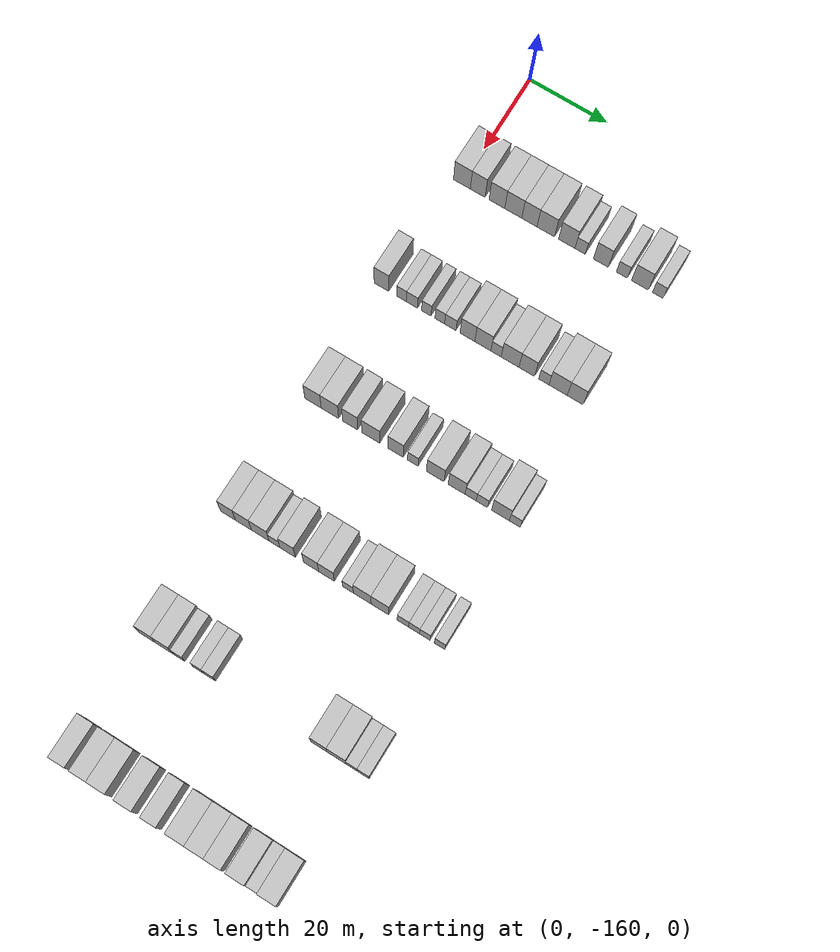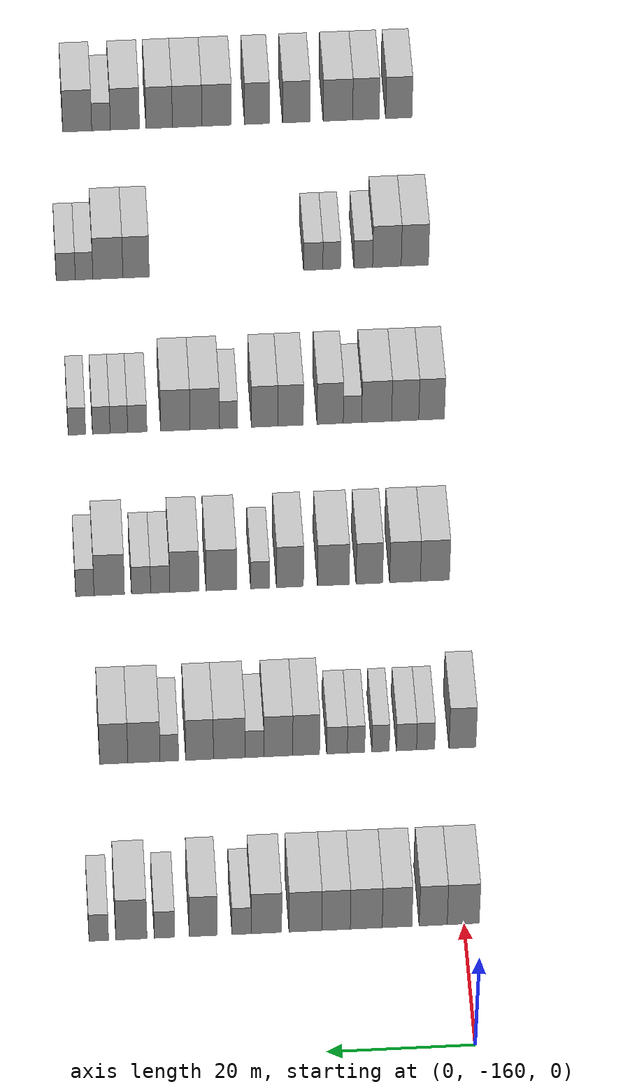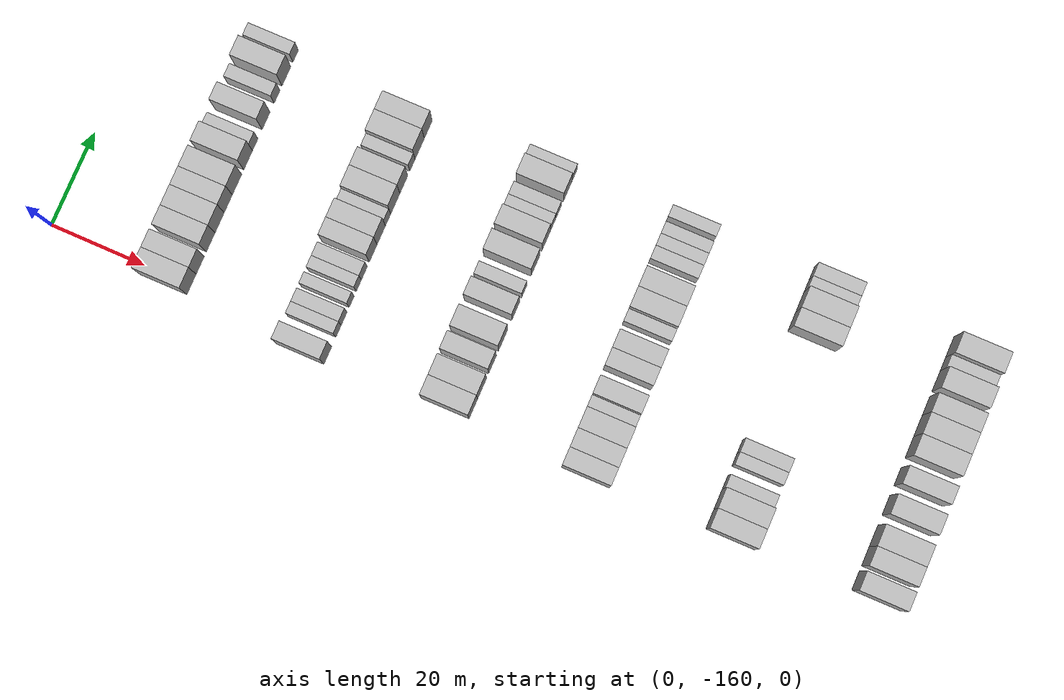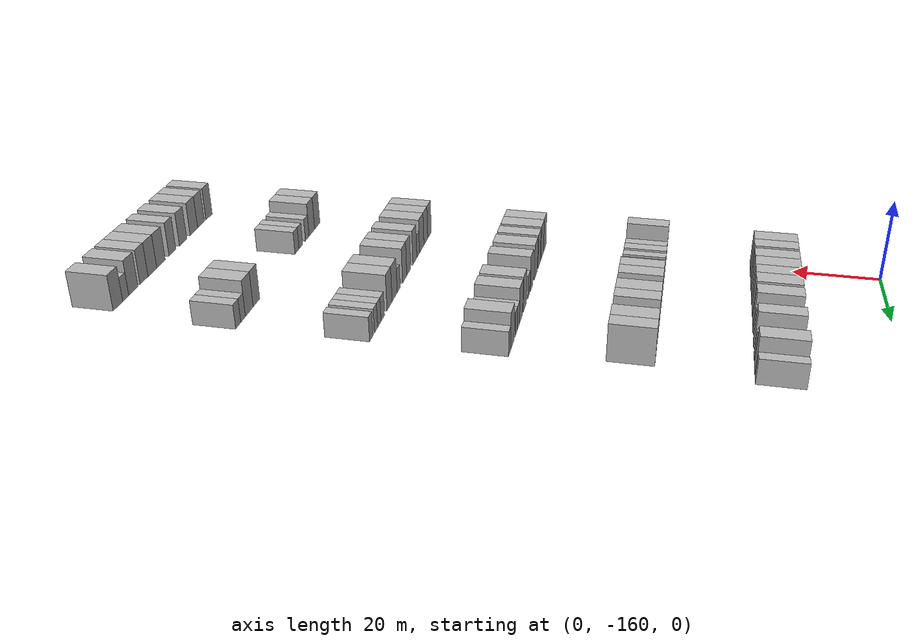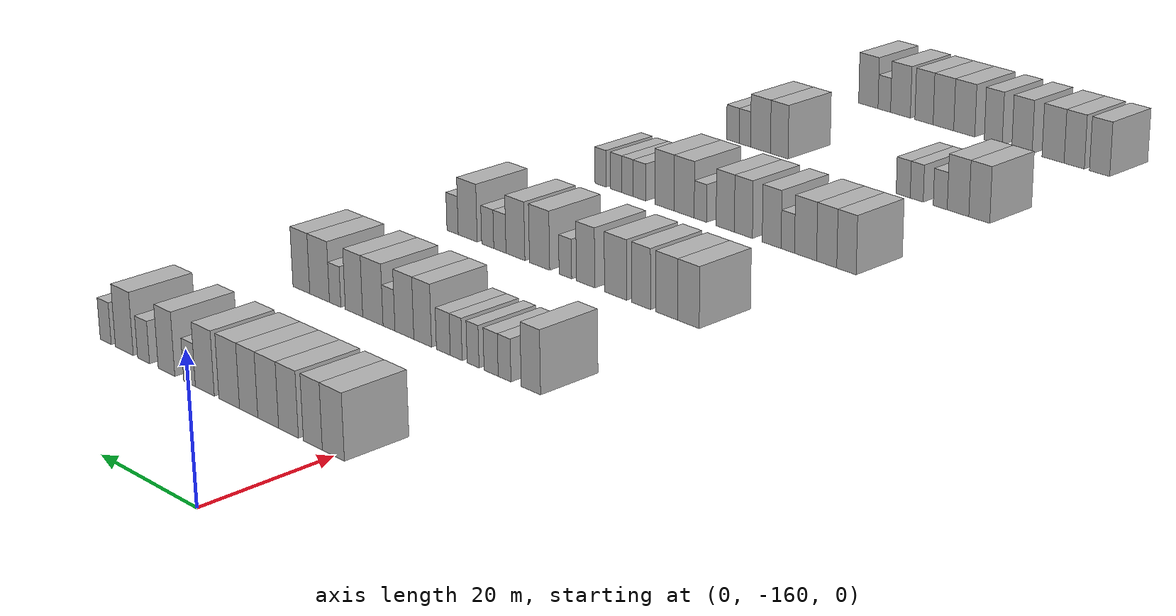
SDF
<sdf version="1.6">
 <world name="default">
  <model name="building_70">
   <static>1</static>
   <pose>25.0000 -159.8549 0 0.000000 0.000000 0.000000</pose>
   <link name="link">
    <pose>0 0 4.50 0 0 0</pose>
    <collision name="collision"><geometry><box><size>10.0000 4.3478 9.0000</size></box></geometry></collision>
    <visual name="visual">
     <cast_shadows>0</cast_shadows>
     <geometry><box><size>10.0000 4.3478 9.0000</size></box></geometry>
     <material>
      <script>
       <uri>model://HANNAS_wall/materials/scripts</uri>
       <uri>model://HANNAS_wall/materials/textures</uri>
       <name>vrc/HANNAS_wall</name>
      </script>
     </material>
    </visual>
   </link>
  </model>
  <model name="building_71">
   <static>1</static>
   <pose>25.0000 -155.7763 0 0.000000 0.000000 0.000000</pose>
   <link name="link">
    <pose>0 0 4.50 0 0 0</pose>
    <collision name="collision"><geometry><box><size>10.0000 3.8095 9.0000</size></box></geometry></collision>
    <visual name="visual">
     <cast_shadows>0</cast_shadows>
     <geometry><box><size>10.0000 3.8095 9.0000</size></box></geometry>
     <material>
      <script>
       <uri>model://HANNAS_wall/materials/scripts</uri>
       <uri>model://HANNAS_wall/materials/textures</uri>
       <name>vrc/HANNAS_wall</name>
      </script>
     </material>
    </visual>
   </link>
  </model>
  <model name="building_72">
   <static>1</static>
   <pose>25.0000 -150.8501 0 0.000000 0.000000 0.000000</pose>
   <link name="link">
    <pose>0 0 4.50 0 0 0</pose>
    <collision name="collision"><geometry><box><size>10.0000 4.0429 9.0000</size></box></geometry></collision>
    <visual name="visual">
     <cast_shadows>0</cast_shadows>
     <geometry><box><size>10.0000 4.0429 9.0000</size></box></geometry>
     <material>
      <script>
       <uri>model://HANNAS_wall/materials/scripts</uri>
       <uri>model://HANNAS_wall/materials/textures</uri>
       <name>vrc/HANNAS_wall</name>
      </script>
     </material>
    </visual>
   </link>
  </model>
  <model name="building_73">
   <static>1</static>
   <pose>25.0000 -146.6563 0 0.000000 0.000000 0.000000</pose>
   <link name="link">
    <pose>0 0 4.50 0 0 0</pose>
    <collision name="collision"><geometry><box><size>10.0000 4.3446 9.0000</size></box></geometry></collision>
    <visual name="visual">
     <cast_shadows>0</cast_shadows>
     <geometry><box><size>10.0000 4.3446 9.0000</size></box></geometry>
     <material>
      <script>
       <uri>model://HANNAS_wall/materials/scripts</uri>
       <uri>model://HANNAS_wall/materials/textures</uri>
       <name>vrc/HANNAS_wall</name>
      </script>
     </material>
    </visual>
   </link>
  </model>
  <model name="building_74">
   <static>1</static>
   <pose>25.0000 -142.5463 0 0.000000 0.000000 0.000000</pose>
   <link name="link">
    <pose>0 0 4.50 0 0 0</pose>
    <collision name="collision"><geometry><box><size>10.0000 3.8754 9.0000</size></box></geometry></collision>
    <visual name="visual">
     <cast_shadows>0</cast_shadows>
     <geometry><box><size>10.0000 3.8754 9.0000</size></box></geometry>
     <material>
      <script>
       <uri>model://HANNAS_wall/materials/scripts</uri>
       <uri>model://HANNAS_wall/materials/textures</uri>
       <name>vrc/HANNAS_wall</name>
      </script>
     </material>
    </visual>
   </link>
  </model>
  <model name="building_75">
   <static>1</static>
   <pose>25.0000 -138.3824 0 0.000000 0.000000 0.000000</pose>
   <link name="link">
    <pose>0 0 4.50 0 0 0</pose>
    <collision name="collision"><geometry><box><size>10.0000 4.4525 9.0000</size></box></geometry></collision>
    <visual name="visual">
     <cast_shadows>0</cast_shadows>
     <geometry><box><size>10.0000 4.4525 9.0000</size></box></geometry>
     <material>
      <script>
       <uri>model://HANNAS_wall/materials/scripts</uri>
       <uri>model://HANNAS_wall/materials/textures</uri>
       <name>vrc/HANNAS_wall</name>
      </script>
     </material>
    </visual>
   </link>
  </model>
  <model name="building_76">
   <static>1</static>
   <pose>25.0000 -133.0756 0 0.000000 0.000000 0.000000</pose>
   <link name="link">
    <pose>0 0 4.50 0 0 0</pose>
    <collision name="collision"><geometry><box><size>10.0000 4.1610 9.0000</size></box></geometry></collision>
    <visual name="visual">
     <cast_shadows>0</cast_shadows>
     <geometry><box><size>10.0000 4.1610 9.0000</size></box></geometry>
     <material>
      <script>
       <uri>model://HANNAS_wall/materials/scripts</uri>
       <uri>model://HANNAS_wall/materials/textures</uri>
       <name>vrc/HANNAS_wall</name>
      </script>
     </material>
    </visual>
   </link>
  </model>
  <model name="building_77">
   <static>1</static>
   <pose>25.0000 -129.6955 0 0.000000 0.000000 0.000000</pose>
   <link name="link">
    <pose>0 0 3.00 0 0 0</pose>
    <collision name="collision"><geometry><box><size>10.0000 2.5992 6.0000</size></box></geometry></collision>
    <visual name="visual">
     <cast_shadows>0</cast_shadows>
     <geometry><box><size>10.0000 2.5992 6.0000</size></box></geometry>
     <material>
      <script>
       <uri>model://HANNAS_wall/materials/scripts</uri>
       <uri>model://HANNAS_wall/materials/textures</uri>
       <name>vrc/HANNAS_wall</name>
      </script>
     </material>
    </visual>
   </link>
  </model>
  <model name="building_78">
   <static>1</static>
   <pose>25.0000 -124.5091 0 0.000000 0.000000 0.000000</pose>
   <link name="link">
    <pose>0 0 4.50 0 0 0</pose>
    <collision name="collision"><geometry><box><size>10.0000 3.7737 9.0000</size></box></geometry></collision>
    <visual name="visual">
     <cast_shadows>0</cast_shadows>
     <geometry><box><size>10.0000 3.7737 9.0000</size></box></geometry>
     <material>
      <script>
       <uri>model://HANNAS_wall/materials/scripts</uri>
       <uri>model://HANNAS_wall/materials/textures</uri>
       <name>vrc/HANNAS_wall</name>
      </script>
     </material>
    </visual>
   </link>
  </model>
  <model name="building_79">
   <static>1</static>
   <pose>25.0000 -119.2365 0 0.000000 0.000000 0.000000</pose>
   <link name="link">
    <pose>0 0 3.00 0 0 0</pose>
    <collision name="collision"><geometry><box><size>10.0000 2.7715 6.0000</size></box></geometry></collision>
    <visual name="visual">
     <cast_shadows>0</cast_shadows>
     <geometry><box><size>10.0000 2.7715 6.0000</size></box></geometry>
     <material>
      <script>
       <uri>model://HANNAS_wall/materials/scripts</uri>
       <uri>model://HANNAS_wall/materials/textures</uri>
       <name>vrc/HANNAS_wall</name>
      </script>
     </material>
    </visual>
   </link>
  </model>
  <model name="building_80">
   <static>1</static>
   <pose>25.0000 -114.7443 0 0.000000 0.000000 0.000000</pose>
   <link name="link">
    <pose>0 0 4.50 0 0 0</pose>
    <collision name="collision"><geometry><box><size>10.0000 4.2129 9.0000</size></box></geometry></collision>
    <visual name="visual">
     <cast_shadows>0</cast_shadows>
     <geometry><box><size>10.0000 4.2129 9.0000</size></box></geometry>
     <material>
      <script>
       <uri>model://HANNAS_wall/materials/scripts</uri>
       <uri>model://HANNAS_wall/materials/textures</uri>
       <name>vrc/HANNAS_wall</name>
      </script>
     </material>
    </visual>
   </link>
  </model>
  <model name="building_81">
   <static>1</static>
   <pose>25.0000 -110.3164 0 0.000000 0.000000 0.000000</pose>
   <link name="link">
    <pose>0 0 3.00 0 0 0</pose>
    <collision name="collision"><geometry><box><size>10.0000 2.6429 6.0000</size></box></geometry></collision>
    <visual name="visual">
     <cast_shadows>0</cast_shadows>
     <geometry><box><size>10.0000 2.6429 6.0000</size></box></geometry>
     <material>
      <script>
       <uri>model://HANNAS_wall/materials/scripts</uri>
       <uri>model://HANNAS_wall/materials/textures</uri>
       <name>vrc/HANNAS_wall</name>
      </script>
     </material>
    </visual>
   </link>
  </model>
  <model name="building_283">
   <static>1</static>
   <pose>55.0000 -162.0901 0 0.000000 0.000000 0.000000</pose>
   <link name="link">
    <pose>0 0 4.50 0 0 0</pose>
    <collision name="collision"><geometry><box><size>10.0000 3.7318 9.0000</size></box></geometry></collision>
    <visual name="visual">
     <cast_shadows>0</cast_shadows>
     <geometry><box><size>10.0000 3.7318 9.0000</size></box></geometry>
     <material>
      <script>
       <uri>model://HANNAS_wall/materials/scripts</uri>
       <uri>model://HANNAS_wall/materials/textures</uri>
       <name>vrc/HANNAS_wall</name>
      </script>
     </material>
    </visual>
   </link>
  </model>
  <model name="building_284">
   <static>1</static>
   <pose>55.0000 -156.9668 0 0.000000 0.000000 0.000000</pose>
   <link name="link">
    <pose>0 0 3.00 0 0 0</pose>
    <collision name="collision"><geometry><box><size>10.0000 2.5148 6.0000</size></box></geometry></collision>
    <visual name="visual">
     <cast_shadows>0</cast_shadows>
     <geometry><box><size>10.0000 2.5148 6.0000</size></box></geometry>
     <material>
      <script>
       <uri>model://HANNAS_wall/materials/scripts</uri>
       <uri>model://HANNAS_wall/materials/textures</uri>
       <name>vrc/HANNAS_wall</name>
      </script>
     </material>
    </visual>
   </link>
  </model>
  <model name="building_285">
   <static>1</static>
   <pose>55.0000 -154.3029 0 0.000000 0.000000 0.000000</pose>
   <link name="link">
    <pose>0 0 3.00 0 0 0</pose>
    <collision name="collision"><geometry><box><size>10.0000 2.8131 6.0000</size></box></geometry></collision>
    <visual name="visual">
     <cast_shadows>0</cast_shadows>
     <geometry><box><size>10.0000 2.8131 6.0000</size></box></geometry>
     <material>
      <script>
       <uri>model://HANNAS_wall/materials/scripts</uri>
       <uri>model://HANNAS_wall/materials/textures</uri>
       <name>vrc/HANNAS_wall</name>
      </script>
     </material>
    </visual>
   </link>
  </model>
  <model name="building_286">
   <static>1</static>
   <pose>55.0000 -150.6920 0 0.000000 0.000000 0.000000</pose>
   <link name="link">
    <pose>0 0 3.00 0 0 0</pose>
    <collision name="collision"><geometry><box><size>10.0000 2.4088 6.0000</size></box></geometry></collision>
    <visual name="visual">
     <cast_shadows>0</cast_shadows>
     <geometry><box><size>10.0000 2.4088 6.0000</size></box></geometry>
     <material>
      <script>
       <uri>model://HANNAS_wall/materials/scripts</uri>
       <uri>model://HANNAS_wall/materials/textures</uri>
       <name>vrc/HANNAS_wall</name>
      </script>
     </material>
    </visual>
   </link>
  </model>
  <model name="building_287">
   <static>1</static>
   <pose>55.0000 -147.2738 0 0.000000 0.000000 0.000000</pose>
   <link name="link">
    <pose>0 0 3.00 0 0 0</pose>
    <collision name="collision"><geometry><box><size>10.0000 2.4276 6.0000</size></box></geometry></collision>
    <visual name="visual">
     <cast_shadows>0</cast_shadows>
     <geometry><box><size>10.0000 2.4276 6.0000</size></box></geometry>
     <material>
      <script>
       <uri>model://HANNAS_wall/materials/scripts</uri>
       <uri>model://HANNAS_wall/materials/textures</uri>
       <name>vrc/HANNAS_wall</name>
      </script>
     </material>
    </visual>
   </link>
  </model>
  <model name="building_288">
   <static>1</static>
   <pose>55.0000 -144.6270 0 0.000000 0.000000 0.000000</pose>
   <link name="link">
    <pose>0 0 3.00 0 0 0</pose>
    <collision name="collision"><geometry><box><size>10.0000 2.8659 6.0000</size></box></geometry></collision>
    <visual name="visual">
     <cast_shadows>0</cast_shadows>
     <geometry><box><size>10.0000 2.8659 6.0000</size></box></geometry>
     <material>
      <script>
       <uri>model://HANNAS_wall/materials/scripts</uri>
       <uri>model://HANNAS_wall/materials/textures</uri>
       <name>vrc/HANNAS_wall</name>
      </script>
     </material>
    </visual>
   </link>
  </model>
  <model name="building_289">
   <static>1</static>
   <pose>55.0000 -140.3318 0 0.000000 0.000000 0.000000</pose>
   <link name="link">
    <pose>0 0 4.50 0 0 0</pose>
    <collision name="collision"><geometry><box><size>10.0000 3.7245 9.0000</size></box></geometry></collision>
    <visual name="visual">
     <cast_shadows>0</cast_shadows>
     <geometry><box><size>10.0000 3.7245 9.0000</size></box></geometry>
     <material>
      <script>
       <uri>model://HANNAS_wall/materials/scripts</uri>
       <uri>model://HANNAS_wall/materials/textures</uri>
       <name>vrc/HANNAS_wall</name>
      </script>
     </material>
    </visual>
   </link>
  </model>
  <model name="building_290">
   <static>1</static>
   <pose>55.0000 -136.4662 0 0.000000 0.000000 0.000000</pose>
   <link name="link">
    <pose>0 0 4.50 0 0 0</pose>
    <collision name="collision"><geometry><box><size>10.0000 4.0069 9.0000</size></box></geometry></collision>
    <visual name="visual">
     <cast_shadows>0</cast_shadows>
     <geometry><box><size>10.0000 4.0069 9.0000</size></box></geometry>
     <material>
      <script>
       <uri>model://HANNAS_wall/materials/scripts</uri>
       <uri>model://HANNAS_wall/materials/textures</uri>
       <name>vrc/HANNAS_wall</name>
      </script>
     </material>
    </visual>
   </link>
  </model>
  <model name="building_291">
   <static>1</static>
   <pose>55.0000 -133.1747 0 0.000000 0.000000 0.000000</pose>
   <link name="link">
    <pose>0 0 3.00 0 0 0</pose>
    <collision name="collision"><geometry><box><size>10.0000 2.5760 6.0000</size></box></geometry></collision>
    <visual name="visual">
     <cast_shadows>0</cast_shadows>
     <geometry><box><size>10.0000 2.5760 6.0000</size></box></geometry>
     <material>
      <script>
       <uri>model://HANNAS_wall/materials/scripts</uri>
       <uri>model://HANNAS_wall/materials/textures</uri>
       <name>vrc/HANNAS_wall</name>
      </script>
     </material>
    </visual>
   </link>
  </model>
  <model name="building_292">
   <static>1</static>
   <pose>55.0000 -129.6655 0 0.000000 0.000000 0.000000</pose>
   <link name="link">
    <pose>0 0 4.50 0 0 0</pose>
    <collision name="collision"><geometry><box><size>10.0000 4.4425 9.0000</size></box></geometry></collision>
    <visual name="visual">
     <cast_shadows>0</cast_shadows>
     <geometry><box><size>10.0000 4.4425 9.0000</size></box></geometry>
     <material>
      <script>
       <uri>model://HANNAS_wall/materials/scripts</uri>
       <uri>model://HANNAS_wall/materials/textures</uri>
       <name>vrc/HANNAS_wall</name>
      </script>
     </material>
    </visual>
   </link>
  </model>
  <model name="building_293">
   <static>1</static>
   <pose>55.0000 -125.5212 0 0.000000 0.000000 0.000000</pose>
   <link name="link">
    <pose>0 0 4.50 0 0 0</pose>
    <collision name="collision"><geometry><box><size>10.0000 3.8461 9.0000</size></box></geometry></collision>
    <visual name="visual">
     <cast_shadows>0</cast_shadows>
     <geometry><box><size>10.0000 3.8461 9.0000</size></box></geometry>
     <material>
      <script>
       <uri>model://HANNAS_wall/materials/scripts</uri>
       <uri>model://HANNAS_wall/materials/textures</uri>
       <name>vrc/HANNAS_wall</name>
      </script>
     </material>
    </visual>
   </link>
  </model>
  <model name="building_294">
   <static>1</static>
   <pose>55.0000 -121.3157 0 0.000000 0.000000 0.000000</pose>
   <link name="link">
    <pose>0 0 3.00 0 0 0</pose>
    <collision name="collision"><geometry><box><size>10.0000 2.5648 6.0000</size></box></geometry></collision>
    <visual name="visual">
     <cast_shadows>0</cast_shadows>
     <geometry><box><size>10.0000 2.5648 6.0000</size></box></geometry>
     <material>
      <script>
       <uri>model://HANNAS_wall/materials/scripts</uri>
       <uri>model://HANNAS_wall/materials/textures</uri>
       <name>vrc/HANNAS_wall</name>
      </script>
     </material>
    </visual>
   </link>
  </model>
  <model name="building_295">
   <static>1</static>
   <pose>55.0000 -117.7941 0 0.000000 0.000000 0.000000</pose>
   <link name="link">
    <pose>0 0 4.50 0 0 0</pose>
    <collision name="collision"><geometry><box><size>10.0000 4.4784 9.0000</size></box></geometry></collision>
    <visual name="visual">
     <cast_shadows>0</cast_shadows>
     <geometry><box><size>10.0000 4.4784 9.0000</size></box></geometry>
     <material>
      <script>
       <uri>model://HANNAS_wall/materials/scripts</uri>
       <uri>model://HANNAS_wall/materials/textures</uri>
       <name>vrc/HANNAS_wall</name>
      </script>
     </material>
    </visual>
   </link>
  </model>
  <model name="building_296">
   <static>1</static>
   <pose>55.0000 -113.6059 0 0.000000 0.000000 0.000000</pose>
   <link name="link">
    <pose>0 0 4.50 0 0 0</pose>
    <collision name="collision"><geometry><box><size>10.0000 3.8980 9.0000</size></box></geometry></collision>
    <visual name="visual">
     <cast_shadows>0</cast_shadows>
     <geometry><box><size>10.0000 3.8980 9.0000</size></box></geometry>
     <material>
      <script>
       <uri>model://HANNAS_wall/materials/scripts</uri>
       <uri>model://HANNAS_wall/materials/textures</uri>
       <name>vrc/HANNAS_wall</name>
      </script>
     </material>
    </visual>
   </link>
  </model>
  <model name="building_504">
   <static>1</static>
   <pose>85.0000 -160.5076 0 0.000000 0.000000 0.000000</pose>
   <link name="link">
    <pose>0 0 4.50 0 0 0</pose>
    <collision name="collision"><geometry><box><size>10.0000 4.1288 9.0000</size></box></geometry></collision>
    <visual name="visual">
     <cast_shadows>0</cast_shadows>
     <geometry><box><size>10.0000 4.1288 9.0000</size></box></geometry>
     <material>
      <script>
       <uri>model://HANNAS_wall/materials/scripts</uri>
       <uri>model://HANNAS_wall/materials/textures</uri>
       <name>vrc/HANNAS_wall</name>
      </script>
     </material>
    </visual>
   </link>
  </model>
  <model name="building_505">
   <static>1</static>
   <pose>85.0000 -156.2576 0 0.000000 0.000000 0.000000</pose>
   <link name="link">
    <pose>0 0 4.50 0 0 0</pose>
    <collision name="collision"><geometry><box><size>10.0000 4.3712 9.0000</size></box></geometry></collision>
    <visual name="visual">
     <cast_shadows>0</cast_shadows>
     <geometry><box><size>10.0000 4.3712 9.0000</size></box></geometry>
     <material>
      <script>
       <uri>model://HANNAS_wall/materials/scripts</uri>
       <uri>model://HANNAS_wall/materials/textures</uri>
       <name>vrc/HANNAS_wall</name>
      </script>
     </material>
    </visual>
   </link>
  </model>
  <model name="building_506">
   <static>1</static>
   <pose>85.0000 -151.1835 0 0.000000 0.000000 0.000000</pose>
   <link name="link">
    <pose>0 0 4.50 0 0 0</pose>
    <collision name="collision"><geometry><box><size>10.0000 3.7770 9.0000</size></box></geometry></collision>
    <visual name="visual">
     <cast_shadows>0</cast_shadows>
     <geometry><box><size>10.0000 3.7770 9.0000</size></box></geometry>
     <material>
      <script>
       <uri>model://HANNAS_wall/materials/scripts</uri>
       <uri>model://HANNAS_wall/materials/textures</uri>
       <name>vrc/HANNAS_wall</name>
      </script>
     </material>
    </visual>
   </link>
  </model>
  <model name="building_507">
   <static>1</static>
   <pose>85.0000 -146.0472 0 0.000000 0.000000 0.000000</pose>
   <link name="link">
    <pose>0 0 4.50 0 0 0</pose>
    <collision name="collision"><geometry><box><size>10.0000 4.4956 9.0000</size></box></geometry></collision>
    <visual name="visual">
     <cast_shadows>0</cast_shadows>
     <geometry><box><size>10.0000 4.4956 9.0000</size></box></geometry>
     <material>
      <script>
       <uri>model://HANNAS_wall/materials/scripts</uri>
       <uri>model://HANNAS_wall/materials/textures</uri>
       <name>vrc/HANNAS_wall</name>
      </script>
     </material>
    </visual>
   </link>
  </model>
  <model name="building_508">
   <static>1</static>
   <pose>85.0000 -139.8824 0 0.000000 0.000000 0.000000</pose>
   <link name="link">
    <pose>0 0 4.50 0 0 0</pose>
    <collision name="collision"><geometry><box><size>10.0000 3.8342 9.0000</size></box></geometry></collision>
    <visual name="visual">
     <cast_shadows>0</cast_shadows>
     <geometry><box><size>10.0000 3.8342 9.0000</size></box></geometry>
     <material>
      <script>
       <uri>model://HANNAS_wall/materials/scripts</uri>
       <uri>model://HANNAS_wall/materials/textures</uri>
       <name>vrc/HANNAS_wall</name>
      </script>
     </material>
    </visual>
   </link>
  </model>
  <model name="building_509">
   <static>1</static>
   <pose>85.0000 -135.6356 0 0.000000 0.000000 0.000000</pose>
   <link name="link">
    <pose>0 0 3.00 0 0 0</pose>
    <collision name="collision"><geometry><box><size>10.0000 2.6594 6.0000</size></box></geometry></collision>
    <visual name="visual">
     <cast_shadows>0</cast_shadows>
     <geometry><box><size>10.0000 2.6594 6.0000</size></box></geometry>
     <material>
      <script>
       <uri>model://HANNAS_wall/materials/scripts</uri>
       <uri>model://HANNAS_wall/materials/textures</uri>
       <name>vrc/HANNAS_wall</name>
      </script>
     </material>
    </visual>
   </link>
  </model>
  <model name="building_510">
   <static>1</static>
   <pose>85.0000 -130.1310 0 0.000000 0.000000 0.000000</pose>
   <link name="link">
    <pose>0 0 4.50 0 0 0</pose>
    <collision name="collision"><geometry><box><size>10.0000 4.3497 9.0000</size></box></geometry></collision>
    <visual name="visual">
     <cast_shadows>0</cast_shadows>
     <geometry><box><size>10.0000 4.3497 9.0000</size></box></geometry>
     <material>
      <script>
       <uri>model://HANNAS_wall/materials/scripts</uri>
       <uri>model://HANNAS_wall/materials/textures</uri>
       <name>vrc/HANNAS_wall</name>
      </script>
     </material>
    </visual>
   </link>
  </model>
  <model name="building_511">
   <static>1</static>
   <pose>85.0000 -124.8808 0 0.000000 0.000000 0.000000</pose>
   <link name="link">
    <pose>0 0 4.50 0 0 0</pose>
    <collision name="collision"><geometry><box><size>10.0000 4.1508 9.0000</size></box></geometry></collision>
    <visual name="visual">
     <cast_shadows>0</cast_shadows>
     <geometry><box><size>10.0000 4.1508 9.0000</size></box></geometry>
     <material>
      <script>
       <uri>model://HANNAS_wall/materials/scripts</uri>
       <uri>model://HANNAS_wall/materials/textures</uri>
       <name>vrc/HANNAS_wall</name>
      </script>
     </material>
    </visual>
   </link>
  </model>
  <model name="building_512">
   <static>1</static>
   <pose>85.0000 -121.4510 0 0.000000 0.000000 0.000000</pose>
   <link name="link">
    <pose>0 0 3.00 0 0 0</pose>
    <collision name="collision"><geometry><box><size>10.0000 2.7087 6.0000</size></box></geometry></collision>
    <visual name="visual">
     <cast_shadows>0</cast_shadows>
     <geometry><box><size>10.0000 2.7087 6.0000</size></box></geometry>
     <material>
      <script>
       <uri>model://HANNAS_wall/materials/scripts</uri>
       <uri>model://HANNAS_wall/materials/textures</uri>
       <name>vrc/HANNAS_wall</name>
      </script>
     </material>
    </visual>
   </link>
  </model>
  <model name="building_513">
   <static>1</static>
   <pose>85.0000 -118.7376 0 0.000000 0.000000 0.000000</pose>
   <link name="link">
    <pose>0 0 3.00 0 0 0</pose>
    <collision name="collision"><geometry><box><size>10.0000 2.7180 6.0000</size></box></geometry></collision>
    <visual name="visual">
     <cast_shadows>0</cast_shadows>
     <geometry><box><size>10.0000 2.7180 6.0000</size></box></geometry>
     <material>
      <script>
       <uri>model://HANNAS_wall/materials/scripts</uri>
       <uri>model://HANNAS_wall/materials/textures</uri>
       <name>vrc/HANNAS_wall</name>
      </script>
     </material>
    </visual>
   </link>
  </model>
  <model name="building_514">
   <static>1</static>
   <pose>85.0000 -114.2153 0 0.000000 0.000000 0.000000</pose>
   <link name="link">
    <pose>0 0 4.50 0 0 0</pose>
    <collision name="collision"><geometry><box><size>10.0000 4.3266 9.0000</size></box></geometry></collision>
    <visual name="visual">
     <cast_shadows>0</cast_shadows>
     <geometry><box><size>10.0000 4.3266 9.0000</size></box></geometry>
     <material>
      <script>
       <uri>model://HANNAS_wall/materials/scripts</uri>
       <uri>model://HANNAS_wall/materials/textures</uri>
       <name>vrc/HANNAS_wall</name>
      </script>
     </material>
    </visual>
   </link>
  </model>
  <model name="building_515">
   <static>1</static>
   <pose>85.0000 -110.7557 0 0.000000 0.000000 0.000000</pose>
   <link name="link">
    <pose>0 0 3.00 0 0 0</pose>
    <collision name="collision"><geometry><box><size>10.0000 2.5927 6.0000</size></box></geometry></collision>
    <visual name="visual">
     <cast_shadows>0</cast_shadows>
     <geometry><box><size>10.0000 2.5927 6.0000</size></box></geometry>
     <material>
      <script>
       <uri>model://HANNAS_wall/materials/scripts</uri>
       <uri>model://HANNAS_wall/materials/textures</uri>
       <name>vrc/HANNAS_wall</name>
      </script>
     </material>
    </visual>
   </link>
  </model>
  <model name="building_719">
   <static>1</static>
   <pose>115.0000 -162.2726 0 0.000000 0.000000 0.000000</pose>
   <link name="link">
    <pose>0 0 4.50 0 0 0</pose>
    <collision name="collision"><geometry><box><size>10.0000 3.7274 9.0000</size></box></geometry></collision>
    <visual name="visual">
     <cast_shadows>0</cast_shadows>
     <geometry><box><size>10.0000 3.7274 9.0000</size></box></geometry>
     <material>
      <script>
       <uri>model://HANNAS_wall/materials/scripts</uri>
       <uri>model://HANNAS_wall/materials/textures</uri>
       <name>vrc/HANNAS_wall</name>
      </script>
     </material>
    </visual>
   </link>
  </model>
  <model name="building_720">
   <static>1</static>
   <pose>115.0000 -158.4397 0 0.000000 0.000000 0.000000</pose>
   <link name="link">
    <pose>0 0 4.50 0 0 0</pose>
    <collision name="collision"><geometry><box><size>10.0000 3.9385 9.0000</size></box></geometry></collision>
    <visual name="visual">
     <cast_shadows>0</cast_shadows>
     <geometry><box><size>10.0000 3.9385 9.0000</size></box></geometry>
     <material>
      <script>
       <uri>model://HANNAS_wall/materials/scripts</uri>
       <uri>model://HANNAS_wall/materials/textures</uri>
       <name>vrc/HANNAS_wall</name>
      </script>
     </material>
    </visual>
   </link>
  </model>
  <model name="building_721">
   <static>1</static>
   <pose>115.0000 -154.2928 0 0.000000 0.000000 0.000000</pose>
   <link name="link">
    <pose>0 0 4.50 0 0 0</pose>
    <collision name="collision"><geometry><box><size>10.0000 4.3551 9.0000</size></box></geometry></collision>
    <visual name="visual">
     <cast_shadows>0</cast_shadows>
     <geometry><box><size>10.0000 4.3551 9.0000</size></box></geometry>
     <material>
      <script>
       <uri>model://HANNAS_wall/materials/scripts</uri>
       <uri>model://HANNAS_wall/materials/textures</uri>
       <name>vrc/HANNAS_wall</name>
      </script>
     </material>
    </visual>
   </link>
  </model>
  <model name="building_722">
   <static>1</static>
   <pose>115.0000 -150.7754 0 0.000000 0.000000 0.000000</pose>
   <link name="link">
    <pose>0 0 3.00 0 0 0</pose>
    <collision name="collision"><geometry><box><size>10.0000 2.6797 6.0000</size></box></geometry></collision>
    <visual name="visual">
     <cast_shadows>0</cast_shadows>
     <geometry><box><size>10.0000 2.6797 6.0000</size></box></geometry>
     <material>
      <script>
       <uri>model://HANNAS_wall/materials/scripts</uri>
       <uri>model://HANNAS_wall/materials/textures</uri>
       <name>vrc/HANNAS_wall</name>
      </script>
     </material>
    </visual>
   </link>
  </model>
  <model name="building_723">
   <static>1</static>
   <pose>115.0000 -147.5322 0 0.000000 0.000000 0.000000</pose>
   <link name="link">
    <pose>0 0 4.50 0 0 0</pose>
    <collision name="collision"><geometry><box><size>10.0000 3.8067 9.0000</size></box></geometry></collision>
    <visual name="visual">
     <cast_shadows>0</cast_shadows>
     <geometry><box><size>10.0000 3.8067 9.0000</size></box></geometry>
     <material>
      <script>
       <uri>model://HANNAS_wall/materials/scripts</uri>
       <uri>model://HANNAS_wall/materials/textures</uri>
       <name>vrc/HANNAS_wall</name>
      </script>
     </material>
    </visual>
   </link>
  </model>
  <model name="building_724">
   <static>1</static>
   <pose>115.0000 -141.7720 0 0.000000 0.000000 0.000000</pose>
   <link name="link">
    <pose>0 0 4.50 0 0 0</pose>
    <collision name="collision"><geometry><box><size>10.0000 3.7137 9.0000</size></box></geometry></collision>
    <visual name="visual">
     <cast_shadows>0</cast_shadows>
     <geometry><box><size>10.0000 3.7137 9.0000</size></box></geometry>
     <material>
      <script>
       <uri>model://HANNAS_wall/materials/scripts</uri>
       <uri>model://HANNAS_wall/materials/textures</uri>
       <name>vrc/HANNAS_wall</name>
      </script>
     </material>
    </visual>
   </link>
  </model>
  <model name="building_725">
   <static>1</static>
   <pose>115.0000 -138.0096 0 0.000000 0.000000 0.000000</pose>
   <link name="link">
    <pose>0 0 4.50 0 0 0</pose>
    <collision name="collision"><geometry><box><size>10.0000 3.8112 9.0000</size></box></geometry></collision>
    <visual name="visual">
     <cast_shadows>0</cast_shadows>
     <geometry><box><size>10.0000 3.8112 9.0000</size></box></geometry>
     <material>
      <script>
       <uri>model://HANNAS_wall/materials/scripts</uri>
       <uri>model://HANNAS_wall/materials/textures</uri>
       <name>vrc/HANNAS_wall</name>
      </script>
     </material>
    </visual>
   </link>
  </model>
  <model name="building_726">
   <static>1</static>
   <pose>115.0000 -132.7849 0 0.000000 0.000000 0.000000</pose>
   <link name="link">
    <pose>0 0 3.00 0 0 0</pose>
    <collision name="collision"><geometry><box><size>10.0000 2.6380 6.0000</size></box></geometry></collision>
    <visual name="visual">
     <cast_shadows>0</cast_shadows>
     <geometry><box><size>10.0000 2.6380 6.0000</size></box></geometry>
     <material>
      <script>
       <uri>model://HANNAS_wall/materials/scripts</uri>
       <uri>model://HANNAS_wall/materials/textures</uri>
       <name>vrc/HANNAS_wall</name>
      </script>
     </material>
    </visual>
   </link>
  </model>
  <model name="building_727">
   <static>1</static>
   <pose>115.0000 -129.3231 0 0.000000 0.000000 0.000000</pose>
   <link name="link">
    <pose>0 0 4.50 0 0 0</pose>
    <collision name="collision"><geometry><box><size>10.0000 4.2857 9.0000</size></box></geometry></collision>
    <visual name="visual">
     <cast_shadows>0</cast_shadows>
     <geometry><box><size>10.0000 4.2857 9.0000</size></box></geometry>
     <material>
      <script>
       <uri>model://HANNAS_wall/materials/scripts</uri>
       <uri>model://HANNAS_wall/materials/textures</uri>
       <name>vrc/HANNAS_wall</name>
      </script>
     </material>
    </visual>
   </link>
  </model>
  <model name="building_728">
   <static>1</static>
   <pose>115.0000 -125.0534 0 0.000000 0.000000 0.000000</pose>
   <link name="link">
    <pose>0 0 4.50 0 0 0</pose>
    <collision name="collision"><geometry><box><size>10.0000 4.2537 9.0000</size></box></geometry></collision>
    <visual name="visual">
     <cast_shadows>0</cast_shadows>
     <geometry><box><size>10.0000 4.2537 9.0000</size></box></geometry>
     <material>
      <script>
       <uri>model://HANNAS_wall/materials/scripts</uri>
       <uri>model://HANNAS_wall/materials/textures</uri>
       <name>vrc/HANNAS_wall</name>
      </script>
     </material>
    </visual>
   </link>
  </model>
  <model name="building_729">
   <static>1</static>
   <pose>115.0000 -119.5283 0 0.000000 0.000000 0.000000</pose>
   <link name="link">
    <pose>0 0 3.00 0 0 0</pose>
    <collision name="collision"><geometry><box><size>10.0000 2.7965 6.0000</size></box></geometry></collision>
    <visual name="visual">
     <cast_shadows>0</cast_shadows>
     <geometry><box><size>10.0000 2.7965 6.0000</size></box></geometry>
     <material>
      <script>
       <uri>model://HANNAS_wall/materials/scripts</uri>
       <uri>model://HANNAS_wall/materials/textures</uri>
       <name>vrc/HANNAS_wall</name>
      </script>
     </material>
    </visual>
   </link>
  </model>
  <model name="building_730">
   <static>1</static>
   <pose>115.0000 -116.8522 0 0.000000 0.000000 0.000000</pose>
   <link name="link">
    <pose>0 0 3.00 0 0 0</pose>
    <collision name="collision"><geometry><box><size>10.0000 2.5557 6.0000</size></box></geometry></collision>
    <visual name="visual">
     <cast_shadows>0</cast_shadows>
     <geometry><box><size>10.0000 2.5557 6.0000</size></box></geometry>
     <material>
      <script>
       <uri>model://HANNAS_wall/materials/scripts</uri>
       <uri>model://HANNAS_wall/materials/textures</uri>
       <name>vrc/HANNAS_wall</name>
      </script>
     </material>
    </visual>
   </link>
  </model>
  <model name="building_731">
   <static>1</static>
   <pose>115.0000 -114.3050 0 0.000000 0.000000 0.000000</pose>
   <link name="link">
    <pose>0 0 3.00 0 0 0</pose>
    <collision name="collision"><geometry><box><size>10.0000 2.5386 6.0000</size></box></geometry></collision>
    <visual name="visual">
     <cast_shadows>0</cast_shadows>
     <geometry><box><size>10.0000 2.5386 6.0000</size></box></geometry>
     <material>
      <script>
       <uri>model://HANNAS_wall/materials/scripts</uri>
       <uri>model://HANNAS_wall/materials/textures</uri>
       <name>vrc/HANNAS_wall</name>
      </script>
     </material>
    </visual>
   </link>
  </model>
  <model name="building_732">
   <static>1</static>
   <pose>115.0000 -110.7708 0 0.000000 0.000000 0.000000</pose>
   <link name="link">
    <pose>0 0 3.00 0 0 0</pose>
    <collision name="collision"><geometry><box><size>10.0000 2.5300 6.0000</size></box></geometry></collision>
    <visual name="visual">
     <cast_shadows>0</cast_shadows>
     <geometry><box><size>10.0000 2.5300 6.0000</size></box></geometry>
     <material>
      <script>
       <uri>model://HANNAS_wall/materials/scripts</uri>
       <uri>model://HANNAS_wall/materials/textures</uri>
       <name>vrc/HANNAS_wall</name>
      </script>
     </material>
    </visual>
   </link>
  </model>
  <model name="building_934">
   <static>1</static>
   <pose>145.0000 -162.0321 0 0.000000 0.000000 0.000000</pose>
   <link name="link">
    <pose>0 0 4.50 0 0 0</pose>
    <collision name="collision"><geometry><box><size>10.0000 4.0466 9.0000</size></box></geometry></collision>
    <visual name="visual">
     <cast_shadows>0</cast_shadows>
     <geometry><box><size>10.0000 4.0466 9.0000</size></box></geometry>
     <material>
      <script>
       <uri>model://HANNAS_wall/materials/scripts</uri>
       <uri>model://HANNAS_wall/materials/textures</uri>
       <name>vrc/HANNAS_wall</name>
      </script>
     </material>
    </visual>
   </link>
  </model>
  <model name="building_935">
   <static>1</static>
   <pose>145.0000 -157.8881 0 0.000000 0.000000 0.000000</pose>
   <link name="link">
    <pose>0 0 4.50 0 0 0</pose>
    <collision name="collision"><geometry><box><size>10.0000 4.2413 9.0000</size></box></geometry></collision>
    <visual name="visual">
     <cast_shadows>0</cast_shadows>
     <geometry><box><size>10.0000 4.2413 9.0000</size></box></geometry>
     <material>
      <script>
       <uri>model://HANNAS_wall/materials/scripts</uri>
       <uri>model://HANNAS_wall/materials/textures</uri>
       <name>vrc/HANNAS_wall</name>
      </script>
     </material>
    </visual>
   </link>
  </model>
  <model name="building_936">
   <static>1</static>
   <pose>145.0000 -154.3819 0 0.000000 0.000000 0.000000</pose>
   <link name="link">
    <pose>0 0 3.00 0 0 0</pose>
    <collision name="collision"><geometry><box><size>10.0000 2.7712 6.0000</size></box></geometry></collision>
    <visual name="visual">
     <cast_shadows>0</cast_shadows>
     <geometry><box><size>10.0000 2.7712 6.0000</size></box></geometry>
     <material>
      <script>
       <uri>model://HANNAS_wall/materials/scripts</uri>
       <uri>model://HANNAS_wall/materials/textures</uri>
       <name>vrc/HANNAS_wall</name>
      </script>
     </material>
    </visual>
   </link>
  </model>
  <model name="building_937">
   <static>1</static>
   <pose>145.0000 -149.6847 0 0.000000 0.000000 0.000000</pose>
   <link name="link">
    <pose>0 0 3.00 0 0 0</pose>
    <collision name="collision"><geometry><box><size>10.0000 2.6232 6.0000</size></box></geometry></collision>
    <visual name="visual">
     <cast_shadows>0</cast_shadows>
     <geometry><box><size>10.0000 2.6232 6.0000</size></box></geometry>
     <material>
      <script>
       <uri>model://HANNAS_wall/materials/scripts</uri>
       <uri>model://HANNAS_wall/materials/textures</uri>
       <name>vrc/HANNAS_wall</name>
      </script>
     </material>
    </visual>
   </link>
  </model>
  <model name="building_938">
   <static>1</static>
   <pose>145.0000 -146.9439 0 0.000000 0.000000 0.000000</pose>
   <link name="link">
    <pose>0 0 3.00 0 0 0</pose>
    <collision name="collision"><geometry><box><size>10.0000 2.8582 6.0000</size></box></geometry></collision>
    <visual name="visual">
     <cast_shadows>0</cast_shadows>
     <geometry><box><size>10.0000 2.8582 6.0000</size></box></geometry>
     <material>
      <script>
       <uri>model://HANNAS_wall/materials/scripts</uri>
       <uri>model://HANNAS_wall/materials/textures</uri>
       <name>vrc/HANNAS_wall</name>
      </script>
     </material>
    </visual>
   </link>
  </model>
  <model name="building_939">
   <static>1</static>
   <pose>145.0000 -120.6669 0 0.000000 0.000000 0.000000</pose>
   <link name="link">
    <pose>0 0 4.50 0 0 0</pose>
    <collision name="collision"><geometry><box><size>10.0000 3.8986 9.0000</size></box></geometry></collision>
    <visual name="visual">
     <cast_shadows>0</cast_shadows>
     <geometry><box><size>10.0000 3.8986 9.0000</size></box></geometry>
     <material>
      <script>
       <uri>model://HANNAS_wall/materials/scripts</uri>
       <uri>model://HANNAS_wall/materials/textures</uri>
       <name>vrc/HANNAS_wall</name>
      </script>
     </material>
    </visual>
   </link>
  </model>
  <model name="building_940">
   <static>1</static>
   <pose>145.0000 -116.4985 0 0.000000 0.000000 0.000000</pose>
   <link name="link">
    <pose>0 0 4.50 0 0 0</pose>
    <collision name="collision"><geometry><box><size>10.0000 4.4382 9.0000</size></box></geometry></collision>
    <visual name="visual">
     <cast_shadows>0</cast_shadows>
     <geometry><box><size>10.0000 4.4382 9.0000</size></box></geometry>
     <material>
      <script>
       <uri>model://HANNAS_wall/materials/scripts</uri>
       <uri>model://HANNAS_wall/materials/textures</uri>
       <name>vrc/HANNAS_wall</name>
      </script>
     </material>
    </visual>
   </link>
  </model>
  <model name="building_941">
   <static>1</static>
   <pose>145.0000 -112.9797 0 0.000000 0.000000 0.000000</pose>
   <link name="link">
    <pose>0 0 3.00 0 0 0</pose>
    <collision name="collision"><geometry><box><size>10.0000 2.5993 6.0000</size></box></geometry></collision>
    <visual name="visual">
     <cast_shadows>0</cast_shadows>
     <geometry><box><size>10.0000 2.5993 6.0000</size></box></geometry>
     <material>
      <script>
       <uri>model://HANNAS_wall/materials/scripts</uri>
       <uri>model://HANNAS_wall/materials/textures</uri>
       <name>vrc/HANNAS_wall</name>
      </script>
     </material>
    </visual>
   </link>
  </model>
  <model name="building_942">
   <static>1</static>
   <pose>145.0000 -110.2649 0 0.000000 0.000000 0.000000</pose>
   <link name="link">
    <pose>0 0 3.00 0 0 0</pose>
    <collision name="collision"><geometry><box><size>10.0000 2.8303 6.0000</size></box></geometry></collision>
    <visual name="visual">
     <cast_shadows>0</cast_shadows>
     <geometry><box><size>10.0000 2.8303 6.0000</size></box></geometry>
     <material>
      <script>
       <uri>model://HANNAS_wall/materials/scripts</uri>
       <uri>model://HANNAS_wall/materials/textures</uri>
       <name>vrc/HANNAS_wall</name>
      </script>
     </material>
    </visual>
   </link>
  </model>
  <model name="building_1156">
   <static>1</static>
   <pose>175.0000 -161.7947 0 0.000000 0.000000 0.000000</pose>
   <link name="link">
    <pose>0 0 4.50 0 0 0</pose>
    <collision name="collision"><geometry><box><size>10.0000 3.9613 9.0000</size></box></geometry></collision>
    <visual name="visual">
     <cast_shadows>0</cast_shadows>
     <geometry><box><size>10.0000 3.9613 9.0000</size></box></geometry>
     <material>
      <script>
       <uri>model://HANNAS_wall/materials/scripts</uri>
       <uri>model://HANNAS_wall/materials/textures</uri>
       <name>vrc/HANNAS_wall</name>
      </script>
     </material>
    </visual>
   </link>
  </model>
  <model name="building_1157">
   <static>1</static>
   <pose>175.0000 -156.8017 0 0.000000 0.000000 0.000000</pose>
   <link name="link">
    <pose>0 0 4.50 0 0 0</pose>
    <collision name="collision"><geometry><box><size>10.0000 4.0248 9.0000</size></box></geometry></collision>
    <visual name="visual">
     <cast_shadows>0</cast_shadows>
     <geometry><box><size>10.0000 4.0248 9.0000</size></box></geometry>
     <material>
      <script>
       <uri>model://HANNAS_wall/materials/scripts</uri>
       <uri>model://HANNAS_wall/materials/textures</uri>
       <name>vrc/HANNAS_wall</name>
      </script>
     </material>
    </visual>
   </link>
  </model>
  <model name="building_1158">
   <static>1</static>
   <pose>175.0000 -152.5610 0 0.000000 0.000000 0.000000</pose>
   <link name="link">
    <pose>0 0 4.50 0 0 0</pose>
    <collision name="collision"><geometry><box><size>10.0000 4.4565 9.0000</size></box></geometry></collision>
    <visual name="visual">
     <cast_shadows>0</cast_shadows>
     <geometry><box><size>10.0000 4.4565 9.0000</size></box></geometry>
     <material>
      <script>
       <uri>model://HANNAS_wall/materials/scripts</uri>
       <uri>model://HANNAS_wall/materials/textures</uri>
       <name>vrc/HANNAS_wall</name>
      </script>
     </material>
    </visual>
   </link>
  </model>
  <model name="building_1159">
   <static>1</static>
   <pose>175.0000 -146.2509 0 0.000000 0.000000 0.000000</pose>
   <link name="link">
    <pose>0 0 4.50 0 0 0</pose>
    <collision name="collision"><geometry><box><size>10.0000 4.1638 9.0000</size></box></geometry></collision>
    <visual name="visual">
     <cast_shadows>0</cast_shadows>
     <geometry><box><size>10.0000 4.1638 9.0000</size></box></geometry>
     <material>
      <script>
       <uri>model://HANNAS_wall/materials/scripts</uri>
       <uri>model://HANNAS_wall/materials/textures</uri>
       <name>vrc/HANNAS_wall</name>
      </script>
     </material>
    </visual>
   </link>
  </model>
  <model name="building_1160">
   <static>1</static>
   <pose>175.0000 -140.2999 0 0.000000 0.000000 0.000000</pose>
   <link name="link">
    <pose>0 0 4.50 0 0 0</pose>
    <collision name="collision"><geometry><box><size>10.0000 3.7383 9.0000</size></box></geometry></collision>
    <visual name="visual">
     <cast_shadows>0</cast_shadows>
     <geometry><box><size>10.0000 3.7383 9.0000</size></box></geometry>
     <material>
      <script>
       <uri>model://HANNAS_wall/materials/scripts</uri>
       <uri>model://HANNAS_wall/materials/textures</uri>
       <name>vrc/HANNAS_wall</name>
      </script>
     </material>
    </visual>
   </link>
  </model>
  <model name="building_1161">
   <static>1</static>
   <pose>175.0000 -134.1869 0 0.000000 0.000000 0.000000</pose>
   <link name="link">
    <pose>0 0 4.50 0 0 0</pose>
    <collision name="collision"><geometry><box><size>10.0000 4.4876 9.0000</size></box></geometry></collision>
    <visual name="visual">
     <cast_shadows>0</cast_shadows>
     <geometry><box><size>10.0000 4.4876 9.0000</size></box></geometry>
     <material>
      <script>
       <uri>model://HANNAS_wall/materials/scripts</uri>
       <uri>model://HANNAS_wall/materials/textures</uri>
       <name>vrc/HANNAS_wall</name>
      </script>
     </material>
    </visual>
   </link>
  </model>
  <model name="building_1162">
   <static>1</static>
   <pose>175.0000 -129.7184 0 0.000000 0.000000 0.000000</pose>
   <link name="link">
    <pose>0 0 4.50 0 0 0</pose>
    <collision name="collision"><geometry><box><size>10.0000 4.4496 9.0000</size></box></geometry></collision>
    <visual name="visual">
     <cast_shadows>0</cast_shadows>
     <geometry><box><size>10.0000 4.4496 9.0000</size></box></geometry>
     <material>
      <script>
       <uri>model://HANNAS_wall/materials/scripts</uri>
       <uri>model://HANNAS_wall/materials/textures</uri>
       <name>vrc/HANNAS_wall</name>
      </script>
     </material>
    </visual>
   </link>
  </model>
  <model name="building_1163">
   <static>1</static>
   <pose>175.0000 -125.5028 0 0.000000 0.000000 0.000000</pose>
   <link name="link">
    <pose>0 0 4.50 0 0 0</pose>
    <collision name="collision"><geometry><box><size>10.0000 3.9816 9.0000</size></box></geometry></collision>
    <visual name="visual">
     <cast_shadows>0</cast_shadows>
     <geometry><box><size>10.0000 3.9816 9.0000</size></box></geometry>
     <material>
      <script>
       <uri>model://HANNAS_wall/materials/scripts</uri>
       <uri>model://HANNAS_wall/materials/textures</uri>
       <name>vrc/HANNAS_wall</name>
      </script>
     </material>
    </visual>
   </link>
  </model>
  <model name="building_1164">
   <static>1</static>
   <pose>175.0000 -120.3167 0 0.000000 0.000000 0.000000</pose>
   <link name="link">
    <pose>0 0 4.50 0 0 0</pose>
    <collision name="collision"><geometry><box><size>10.0000 4.3906 9.0000</size></box></geometry></collision>
    <visual name="visual">
     <cast_shadows>0</cast_shadows>
     <geometry><box><size>10.0000 4.3906 9.0000</size></box></geometry>
     <material>
      <script>
       <uri>model://HANNAS_wall/materials/scripts</uri>
       <uri>model://HANNAS_wall/materials/textures</uri>
       <name>vrc/HANNAS_wall</name>
      </script>
     </material>
    </visual>
   </link>
  </model>
  <model name="building_1165">
   <static>1</static>
   <pose>175.0000 -116.7104 0 0.000000 0.000000 0.000000</pose>
   <link name="link">
    <pose>0 0 3.00 0 0 0</pose>
    <collision name="collision"><geometry><box><size>10.0000 2.8220 6.0000</size></box></geometry></collision>
    <visual name="visual">
     <cast_shadows>0</cast_shadows>
     <geometry><box><size>10.0000 2.8220 6.0000</size></box></geometry>
     <material>
      <script>
       <uri>model://HANNAS_wall/materials/scripts</uri>
       <uri>model://HANNAS_wall/materials/textures</uri>
       <name>vrc/HANNAS_wall</name>
      </script>
     </material>
    </visual>
   </link>
  </model>
  <model name="building_1166">
   <static>1</static>
   <pose>175.0000 -113.1058 0 0.000000 0.000000 0.000000</pose>
   <link name="link">
    <pose>0 0 4.50 0 0 0</pose>
    <collision name="collision"><geometry><box><size>10.0000 4.3872 9.0000</size></box></geometry></collision>
    <visual name="visual">
     <cast_shadows>0</cast_shadows>
     <geometry><box><size>10.0000 4.3872 9.0000</size></box></geometry>
     <material>
      <script>
       <uri>model://HANNAS_wall/materials/scripts</uri>
       <uri>model://HANNAS_wall/materials/textures</uri>
       <name>vrc/HANNAS_wall</name>
      </script>
     </material>
    </visual>
   </link>
  </model>
 </world>
</sdf>
